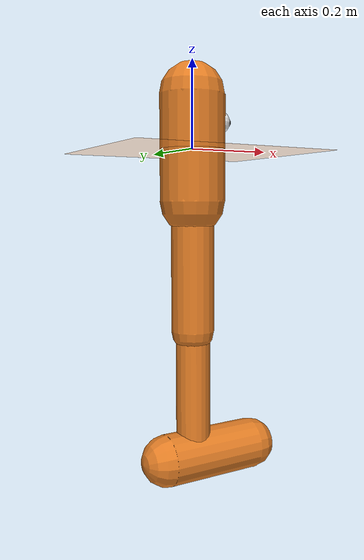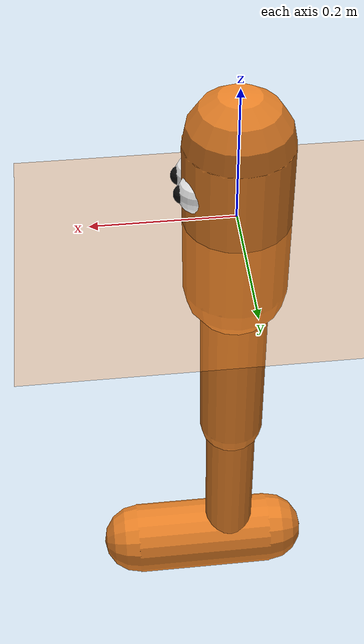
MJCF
<mujoco model="pogo">
  <compiler angle="degree" inertiafromgeom="true"/>
  <option integrator="RK4" timestep="0.002"/>

  <default>
    <joint armature="0.5" damping="1" limited="true"/>
    <geom conaffinity="0" condim="3" contype="1" margin="0.001"
          friction="0.9 0.1 0.1" solimp=".8 .8 .01" solref=".02 1" rgba="0.9 0.5 0.15 1"/>
    <motor ctrllimited="true" ctrlrange="-1 1"/>
  </default>

  <asset>
    <texture name="sky" type="skybox" builtin="gradient" rgb1="0.5 0.7 0.9" rgb2="0.05 0.08 0.12"
             width="512" height="512"/>
    <texture name="grid" type="2d" builtin="checker" rgb1="0.16 0.20 0.26" rgb2="0.22 0.28 0.36"
             width="512" height="512"/>
    <material name="grid" texture="grid" texrepeat="12 12" reflectance="0.15"/>
  </asset>

  <worldbody>
    <light name="top" pos="0 0 4" dir="0 0 -1" diffuse="0.9 0.9 0.9"/>
    <geom name="floor" type="plane" conaffinity="1" contype="1" condim="3"
          size="30 5 0.1" pos="0 0 0" material="grid" friction="0.9 0.1 0.1"/>

    <body name="torso" pos="0 0 0">
      <!-- planar root: x-slide, z-slide, y-hinge (the flip axis, UNLIMITED) -->
      <joint name="rootx" type="slide" axis="1 0 0" limited="false" armature="0" damping="0"/>
      <joint name="rootz" type="slide" axis="0 0 1" limited="false" armature="0" damping="0"/>
      <joint name="rooty" type="hinge" axis="0 1 0" limited="false" armature="0" damping="0"/>

      <geom name="torso_geom" type="capsule" fromto="0 0 -0.12 0 0 0.12" size="0.075"/>
      <!-- face (visual only: contype=0 conaffinity=0 so it never collides) -->
      <geom name="eye_l" type="sphere" size="0.028" pos="0.055 0.02 0.06" contype="0" conaffinity="0" rgba="1 1 1 1"/>
      <geom name="eye_r" type="sphere" size="0.028" pos="0.055 -0.02 0.06" contype="0" conaffinity="0" rgba="1 1 1 1"/>
      <geom name="pupil_l" type="sphere" size="0.013" pos="0.075 0.02 0.06" contype="0" conaffinity="0" rgba="0.05 0.05 0.05 1"/>
      <geom name="pupil_r" type="sphere" size="0.013" pos="0.075 -0.02 0.06" contype="0" conaffinity="0" rgba="0.05 0.05 0.05 1"/>

      <body name="thigh" pos="0 0 -0.12">
        <joint name="hip" type="hinge" axis="0 1 0" range="-150 20"/>
        <geom name="thigh_geom" type="capsule" fromto="0 0 0 0 0 -0.30" size="0.05"/>
        <body name="leg" pos="0 0 -0.30">
          <joint name="knee" type="hinge" axis="0 1 0" range="-150 0"/>
          <geom name="leg_geom" type="capsule" fromto="0 0 0 0 0 -0.30" size="0.04"/>
          <body name="foot" pos="0 0 -0.30">
            <joint name="ankle" type="hinge" axis="0 1 0" range="-50 50"/>
            <geom name="foot_geom" type="capsule" fromto="-0.07 0 0 0.16 0 0" size="0.06"/>
          </body>
        </body>
      </body>
    </body>
  </worldbody>

  <actuator>
    <motor name="hip_motor"   joint="hip"   gear="200"/>
    <motor name="knee_motor"  joint="knee"  gear="200"/>
    <motor name="ankle_motor" joint="ankle" gear="200"/>
  </actuator>
</mujoco>
